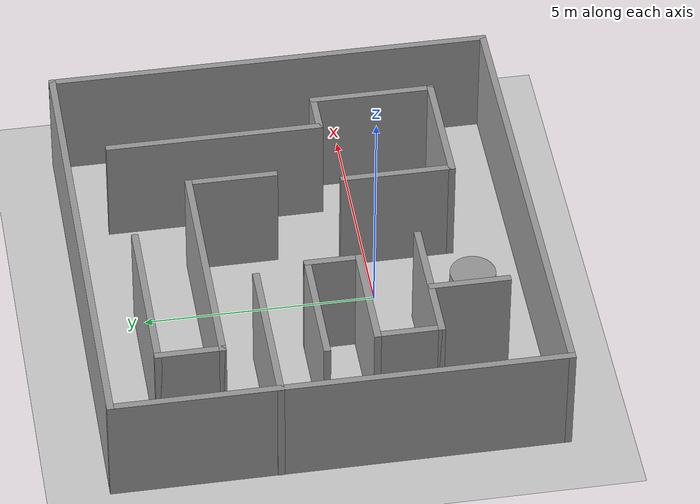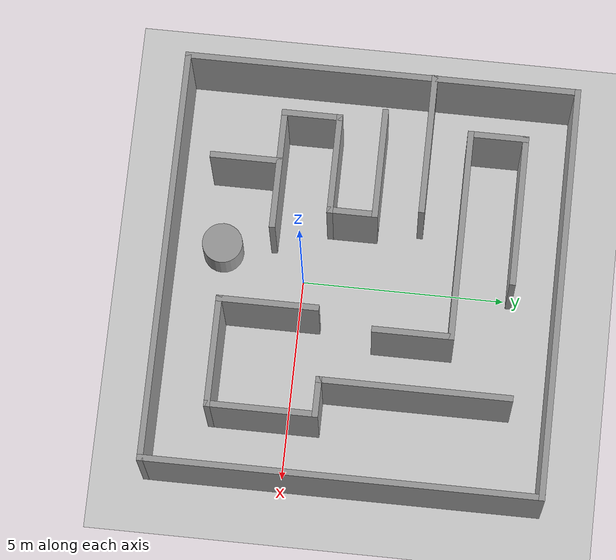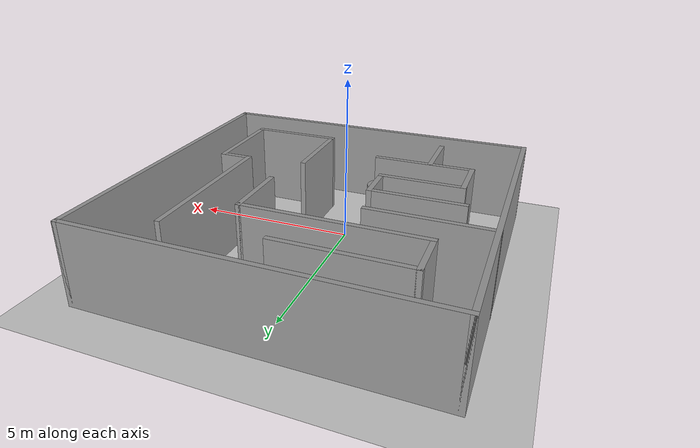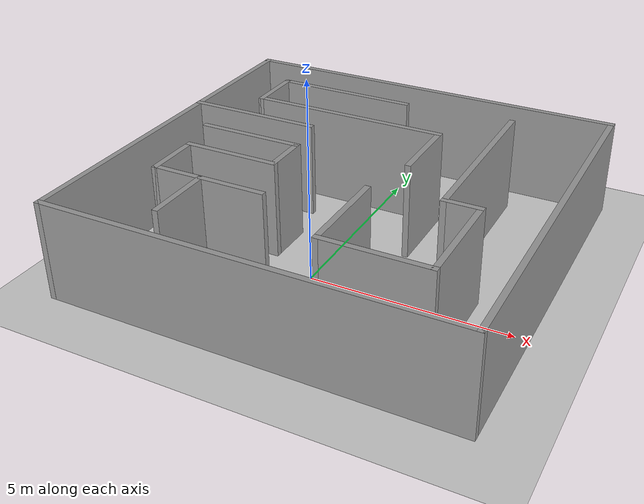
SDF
<sdf version="1.7">
 <world name="default">
  <light name="sun" type="directional">
   <pose>0 0 10 0 -0 0</pose>
   <diffuse>0.8 0.8 0.8 1</diffuse>
   <specular>0.2 0.2 0.2 1</specular>
   <attenuation>
    <range>1000</range>
    <constant>0.9</constant>
    <linear>0.01</linear>
    <quadratic>0.001</quadratic>
   </attenuation>
   <direction>-0.5 0.1 -0.9</direction>
   <spot><inner_angle>0</inner_angle><outer_angle>0</outer_angle><falloff>0</falloff></spot>
  </light>
  <model name="ground_plane">
   <static>1</static>
   <link name="link">
    <collision name="collision">
     <geometry><plane><normal>0 0 1</normal><size>100 100</size></plane></geometry>
     <surface>
      <contact><collide_bitmask>65535</collide_bitmask></contact>
      <friction><ode><mu>100</mu><mu2>50</mu2></ode></friction>
     </surface>
    </collision>
    <visual name="visual">
     <cast_shadows>0</cast_shadows>
     <geometry><plane><normal>0 0 1</normal><size>100 100</size></plane></geometry>
     <material>
      <script><uri>file://media/materials/scripts/gazebo.material</uri><name>Gazebo/Grey</name></script>
     </material>
    </visual>
   </link>
  </model>
  <gravity>0 0 -9.8</gravity>
  <magnetic_field>6e-06 2.3e-05 -4.2e-05</magnetic_field>
  <atmosphere type="adiabatic"/>
  <physics type="ode">
   <max_step_size>0.001</max_step_size>
   <real_time_factor>1</real_time_factor>
   <real_time_update_rate>1000</real_time_update_rate>
  </physics>
  <scene><ambient>0.4 0.4 0.4 1</ambient><background>0.7 0.7 0.7 1</background><shadows>1</shadows></scene>
  <spherical_coordinates>
   <surface_model>EARTH_WGS84</surface_model>
   <latitude_deg>0</latitude_deg>
   <longitude_deg>0</longitude_deg>
   <elevation>0</elevation>
   <heading_deg>0</heading_deg>
  </spherical_coordinates>
  <model name="test_map">
   <pose>0.204111 1.496 0 0 -0 0</pose>
   <link name="Wall_11">
    <collision name="Wall_11_Collision">
     <geometry><box><size>3.75 0.15 2.5</size></box></geometry>
     <pose>0 0 1.25 0 -0 0</pose>
    </collision>
    <visual name="Wall_11_Visual">
     <pose>0 0 1.25 0 -0 0</pose>
     <geometry><box><size>3.75 0.15 2.5</size></box></geometry>
     <material>
      <script><uri>file://media/materials/scripts/gazebo.material</uri><name>Gazebo/Grey</name></script>
      <ambient>1 1 1 1</ambient>
     </material>
     <meta><layer>0</layer></meta>
    </visual>
    <pose>-1.92417 3.64211 0 0 -0 0</pose>
   </link>
   <link name="Wall_13">
    <collision name="Wall_13_Collision">
     <geometry><box><size>1.5 0.15 2.5</size></box></geometry>
     <pose>0 0 1.25 0 -0 0</pose>
    </collision>
    <visual name="Wall_13_Visual">
     <pose>0 0 1.25 0 -0 0</pose>
     <geometry><box><size>1.5 0.15 2.5</size></box></geometry>
     <material>
      <script><uri>file://media/materials/scripts/gazebo.material</uri><name>Gazebo/Grey</name></script>
      <ambient>1 1 1 1</ambient>
     </material>
     <meta><layer>0</layer></meta>
    </visual>
    <pose>-3.72417 2.96711 0 0 -0 -1.5708</pose>
   </link>
   <link name="Wall_14">
    <collision name="Wall_14_Collision">
     <geometry><box><size>5.25 0.15 2.5</size></box></geometry>
     <pose>0 0 1.25 0 -0 0</pose>
    </collision>
    <visual name="Wall_14_Visual">
     <pose>0 0 1.25 0 -0 0</pose>
     <geometry><box><size>5.25 0.15 2.5</size></box></geometry>
     <material>
      <script><uri>file://media/materials/scripts/gazebo.material</uri><name>Gazebo/Grey</name></script>
      <ambient>1 1 1 1</ambient>
     </material>
     <meta><layer>0</layer></meta>
    </visual>
    <pose>-1.17417 2.29211 0 0 -0 0</pose>
   </link>
   <link name="Wall_15">
    <collision name="Wall_15_Collision">
     <geometry><box><size>2 0.15 2.5</size></box></geometry>
     <pose>0 0 1.25 0 -0 0</pose>
    </collision>
    <visual name="Wall_15_Visual">
     <pose>0 0 1.25 0 -0 0</pose>
     <geometry><box><size>2 0.15 2.5</size></box></geometry>
     <material>
      <script><uri>file://media/materials/scripts/gazebo.material</uri><name>Gazebo/Grey</name></script>
      <ambient>1 1 1 1</ambient>
     </material>
     <meta><layer>0</layer></meta>
    </visual>
    <pose>1.37583 1.36711 0 0 -0 -1.5708</pose>
   </link>
   <link name="Wall_23">
    <collision name="Wall_23_Collision">
     <geometry><box><size>3.5 0.15 2.5</size></box></geometry>
     <pose>0 0 1.25 0 -0 0</pose>
    </collision>
    <visual name="Wall_23_Visual">
     <pose>0 0 1.25 0 -0 0</pose>
     <geometry><box><size>3.5 0.15 2.5</size></box></geometry>
     <material>
      <script><uri>file://media/materials/scripts/gazebo.material</uri><name>Gazebo/Grey</name></script>
      <ambient>1 1 1 1</ambient>
     </material>
     <meta><layer>0</layer></meta>
    </visual>
    <pose>-3.37908 1.2821 0 0 -0 0</pose>
   </link>
   <link name="Wall_26">
    <collision name="Wall_26_Collision">
     <geometry><box><size>2.75 0.15 2.5</size></box></geometry>
     <pose>0 0 1.25 0 -0 0</pose>
    </collision>
    <visual name="Wall_26_Visual">
     <pose>0 0 1.25 0 -0 0</pose>
     <geometry><box><size>2.75 0.15 2.5</size></box></geometry>
     <material>
      <script><uri>file://media/materials/scripts/gazebo.material</uri><name>Gazebo/Grey</name></script>
      <ambient>1 1 1 1</ambient>
     </material>
     <meta><layer>0</layer></meta>
    </visual>
    <pose>-2.76987 0.164894 0 0 -0 0</pose>
   </link>
   <link name="Wall_27">
    <collision name="Wall_27_Collision">
     <geometry><box><size>1.25 0.15 2.5</size></box></geometry>
     <pose>0 0 1.25 0 -0 0</pose>
    </collision>
    <visual name="Wall_27_Visual">
     <pose>0 0 1.25 0 -0 0</pose>
     <geometry><box><size>1.25 0.15 2.5</size></box></geometry>
     <material>
      <script><uri>file://media/materials/scripts/gazebo.material</uri><name>Gazebo/Grey</name></script>
      <ambient>1 1 1 1</ambient>
     </material>
     <meta><layer>0</layer></meta>
    </visual>
    <pose>-1.46987 -0.385106 0 0 -0 -1.5708</pose>
   </link>
   <link name="Wall_28">
    <collision name="Wall_28_Collision">
     <geometry><box><size>2.5 0.15 2.5</size></box></geometry>
     <pose>0 0 1.25 0 -0 0</pose>
    </collision>
    <visual name="Wall_28_Visual">
     <pose>0 0 1.25 0 -0 0</pose>
     <geometry><box><size>2.5 0.15 2.5</size></box></geometry>
     <material>
      <script><uri>file://media/materials/scripts/gazebo.material</uri><name>Gazebo/Grey</name></script>
      <ambient>1 1 1 1</ambient>
     </material>
     <meta><layer>0</layer></meta>
    </visual>
    <pose>-2.64487 -0.935106 0 0 -0 3.14159</pose>
   </link>
   <link name="Wall_29">
    <collision name="Wall_29_Collision">
     <geometry><box><size>1.5 0.15 2.5</size></box></geometry>
     <pose>0 0 1.25 0 -0 0</pose>
    </collision>
    <visual name="Wall_29_Visual">
     <pose>0 0 1.25 0 -0 0</pose>
     <geometry><box><size>1.5 0.15 2.5</size></box></geometry>
     <material>
      <script><uri>file://media/materials/scripts/gazebo.material</uri><name>Gazebo/Grey</name></script>
      <ambient>1 1 1 1</ambient>
     </material>
     <meta><layer>0</layer></meta>
    </visual>
    <pose>-3.81987 -1.61011 0 0 -0 -1.5708</pose>
   </link>
   <link name="Wall_30">
    <collision name="Wall_30_Collision">
     <geometry><box><size>3 0.15 2.5</size></box></geometry>
     <pose>0 0 1.25 0 -0 0</pose>
    </collision>
    <visual name="Wall_30_Visual">
     <pose>0 0 1.25 0 -0 0</pose>
     <geometry><box><size>3 0.15 2.5</size></box></geometry>
     <material>
      <script><uri>file://media/materials/scripts/gazebo.material</uri><name>Gazebo/Grey</name></script>
      <ambient>1 1 1 1</ambient>
     </material>
     <meta><layer>0</layer></meta>
    </visual>
    <pose>-2.39487 -2.28511 0 0 -0 0</pose>
   </link>
   <link name="Wall_32">
    <collision name="Wall_32_Collision">
     <geometry><box><size>4.75 0.15 2.5</size></box></geometry>
     <pose>0 0 1.25 0 -0 0</pose>
    </collision>
    <visual name="Wall_32_Visual">
     <pose>0 0 1.25 0 -0 0</pose>
     <geometry><box><size>4.75 0.15 2.5</size></box></geometry>
     <material>
      <script><uri>file://media/materials/scripts/gazebo.material</uri><name>Gazebo/Grey</name></script>
      <ambient>1 1 1 1</ambient>
     </material>
     <meta><layer>0</layer></meta>
    </visual>
    <pose>2.73978 1.53572 0 0 -0 -1.5708</pose>
   </link>
   <link name="Wall_33">
    <collision name="Wall_33_Collision">
     <geometry><box><size>1 0.15 2.5</size></box></geometry>
     <pose>0 0 1.25 0 -0 0</pose>
    </collision>
    <visual name="Wall_33_Visual">
     <pose>0 0 1.25 0 -0 0</pose>
     <geometry><box><size>1 0.15 2.5</size></box></geometry>
     <material>
      <script><uri>file://media/materials/scripts/gazebo.material</uri><name>Gazebo/Grey</name></script>
      <ambient>1 1 1 1</ambient>
     </material>
     <meta><layer>0</layer></meta>
    </visual>
    <pose>3.16478 -0.764278 0 0 -0 0</pose>
   </link>
   <link name="Wall_34">
    <collision name="Wall_34_Collision">
     <geometry><box><size>2.75 0.15 2.5</size></box></geometry>
     <pose>0 0 1.25 0 -0 0</pose>
    </collision>
    <visual name="Wall_34_Visual">
     <pose>0 0 1.25 0 -0 0</pose>
     <geometry><box><size>2.75 0.15 2.5</size></box></geometry>
     <material>
      <script><uri>file://media/materials/scripts/gazebo.material</uri><name>Gazebo/Grey</name></script>
      <ambient>1 1 1 1</ambient>
     </material>
     <meta><layer>0</layer></meta>
    </visual>
    <pose>3.58978 -2.06428 0 0 -0 -1.5708</pose>
   </link>
   <link name="Wall_35">
    <collision name="Wall_35_Collision">
     <geometry><box><size>2.75 0.15 2.5</size></box></geometry>
     <pose>0 0 1.25 0 -0 0</pose>
    </collision>
    <visual name="Wall_35_Visual">
     <pose>0 0 1.25 0 -0 0</pose>
     <geometry><box><size>2.75 0.15 2.5</size></box></geometry>
     <material>
      <script><uri>file://media/materials/scripts/gazebo.material</uri><name>Gazebo/Grey</name></script>
      <ambient>1 1 1 1</ambient>
     </material>
     <meta><layer>0</layer></meta>
    </visual>
    <pose>2.28978 -3.36428 0 0 -0 3.14159</pose>
   </link>
   <link name="Wall_36">
    <collision name="Wall_36_Collision">
     <geometry><box><size>2.5 0.15 2.5</size></box></geometry>
     <pose>0 0 1.25 0 -0 0</pose>
    </collision>
    <visual name="Wall_36_Visual">
     <pose>0 0 1.25 0 -0 0</pose>
     <geometry><box><size>2.5 0.15 2.5</size></box></geometry>
     <material>
      <script><uri>file://media/materials/scripts/gazebo.material</uri><name>Gazebo/Grey</name></script>
      <ambient>1 1 1 1</ambient>
     </material>
     <meta><layer>0</layer></meta>
    </visual>
    <pose>0.989778 -2.18928 0 0 -0 1.5708</pose>
   </link>
   <link name="Wall_38">
    <collision name="Wall_38_Collision">
     <geometry><box><size>1.75 0.15 2.5</size></box></geometry>
     <pose>0 0 1.25 0 -0 0</pose>
    </collision>
    <visual name="Wall_38_Visual">
     <pose>0 0 1.25 0 -0 0</pose>
     <geometry><box><size>1.75 0.15 2.5</size></box></geometry>
     <material>
      <script><uri>file://media/materials/scripts/gazebo.material</uri><name>Gazebo/Grey</name></script>
      <ambient>1 1 1 1</ambient>
     </material>
     <meta><layer>0</layer></meta>
    </visual>
    <pose>-2.58026 -3.10892 0 0 -0 -1.5708</pose>
   </link>
   <link name="Wall_5">
    <collision name="Wall_5_Collision">
     <geometry><box><size>10.25 0.15 2.5</size></box></geometry>
     <pose>0 0 1.25 0 -0 0</pose>
    </collision>
    <visual name="Wall_5_Visual">
     <pose>0 0 1.25 0 -0 0</pose>
     <geometry><box><size>10.25 0.15 2.5</size></box></geometry>
     <material>
      <script><uri>file://media/materials/scripts/gazebo.material</uri><name>Gazebo/Grey</name></script>
      <ambient>1 1 1 1</ambient>
     </material>
     <meta><layer>0</layer></meta>
    </visual>
    <pose>0.00408 4.8 0 0 -0 0</pose>
   </link>
   <link name="Wall_6">
    <collision name="Wall_6_Collision">
     <geometry><box><size>9.75 0.15 2.5</size></box></geometry>
     <pose>0 0 1.25 0 -0 0</pose>
    </collision>
    <visual name="Wall_6_Visual">
     <pose>0 0 1.25 0 -0 0</pose>
     <geometry><box><size>9.75 0.15 2.5</size></box></geometry>
     <material>
      <script><uri>file://media/materials/scripts/gazebo.material</uri><name>Gazebo/Grey</name></script>
      <ambient>1 1 1 1</ambient>
     </material>
     <meta><layer>0</layer></meta>
    </visual>
    <pose>5.05408 0 0 0 -0 -1.5708</pose>
   </link>
   <link name="Wall_7">
    <collision name="Wall_7_Collision">
     <geometry><box><size>10.25 0.15 2.5</size></box></geometry>
     <pose>0 0 1.25 0 -0 0</pose>
    </collision>
    <visual name="Wall_7_Visual">
     <pose>0 0 1.25 0 -0 0</pose>
     <geometry><box><size>10.25 0.15 2.5</size></box></geometry>
     <material>
      <script><uri>file://media/materials/scripts/gazebo.material</uri><name>Gazebo/Grey</name></script>
      <ambient>1 1 1 1</ambient>
     </material>
     <meta><layer>0</layer></meta>
    </visual>
    <pose>0.00408 -4.8 0 0 -0 3.14159</pose>
   </link>
   <link name="Wall_8">
    <collision name="Wall_8_Collision">
     <geometry><box><size>9.75 0.15 2.5</size></box></geometry>
     <pose>0 0 1.25 0 -0 0</pose>
    </collision>
    <visual name="Wall_8_Visual">
     <pose>0 0 1.25 0 -0 0</pose>
     <geometry><box><size>9.75 0.15 2.5</size></box></geometry>
     <material>
      <script><uri>file://media/materials/scripts/gazebo.material</uri><name>Gazebo/Grey</name></script>
      <ambient>1 1 1 1</ambient>
     </material>
     <meta><layer>0</layer></meta>
    </visual>
    <pose>-5.04592 0 0 0 -0 1.5708</pose>
   </link>
   <static>1</static>
  </model>
  <model name="unit_cylinder">
   <pose>-0.565934 -2.04938 0.499993 -3e-06 -4e-06 -0</pose>
   <link name="link">
    <inertial>
     <mass>1</mass>
     <inertia><ixx>0.145833</ixx><ixy>0</ixy><ixz>0</ixz><iyy>0.145833</iyy><iyz>0</iyz><izz>0.125</izz></inertia>
    </inertial>
    <collision name="collision">
     <geometry><cylinder><radius>0.5</radius><length>1</length></cylinder></geometry>
    </collision>
    <visual name="visual">
     <geometry><cylinder><radius>0.5</radius><length>1</length></cylinder></geometry>
     <material>
      <script><name>Gazebo/Grey</name><uri>file://media/materials/scripts/gazebo.material</uri></script>
     </material>
    </visual>
   </link>
  </model>
 </world>
</sdf>
